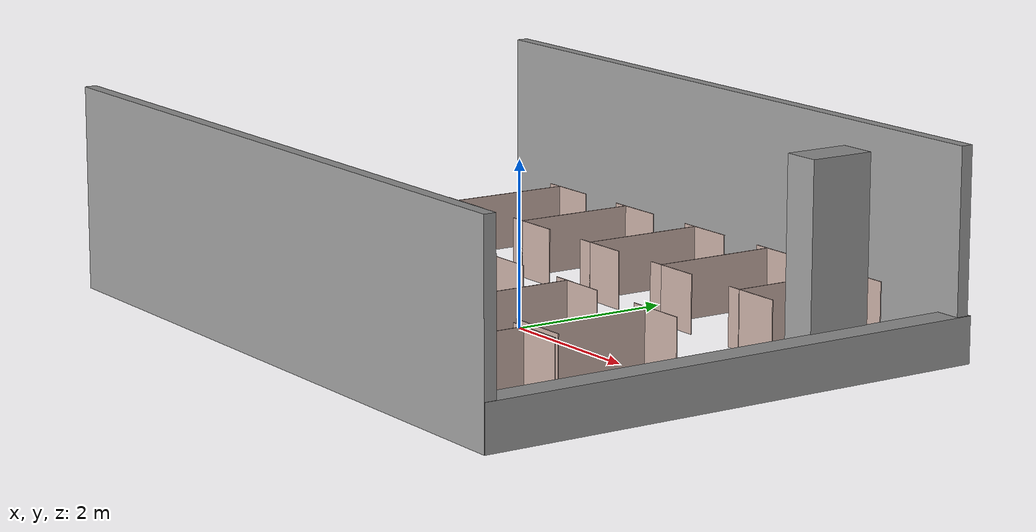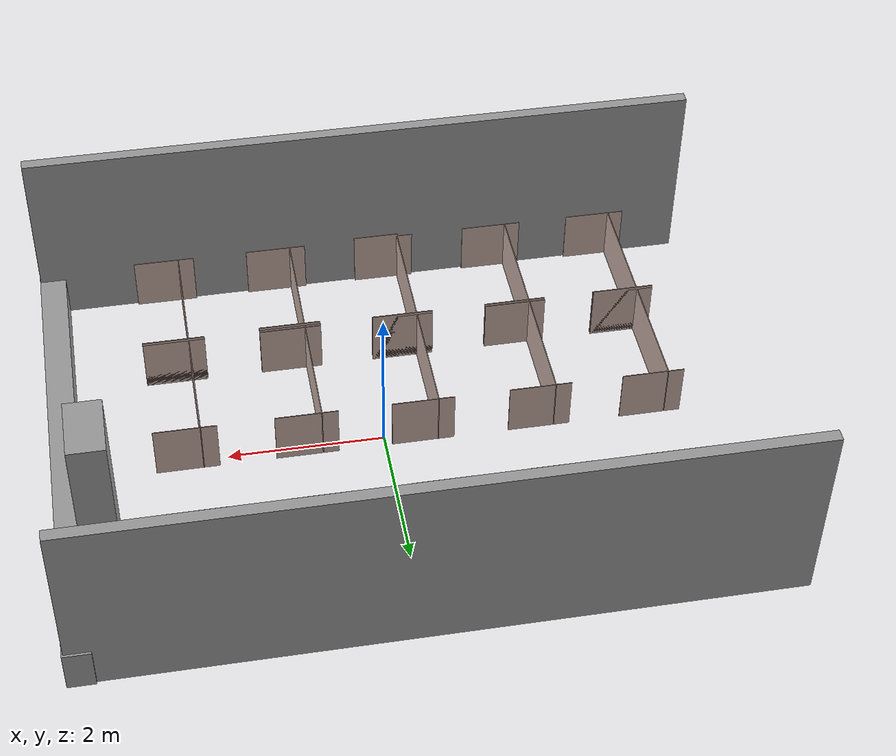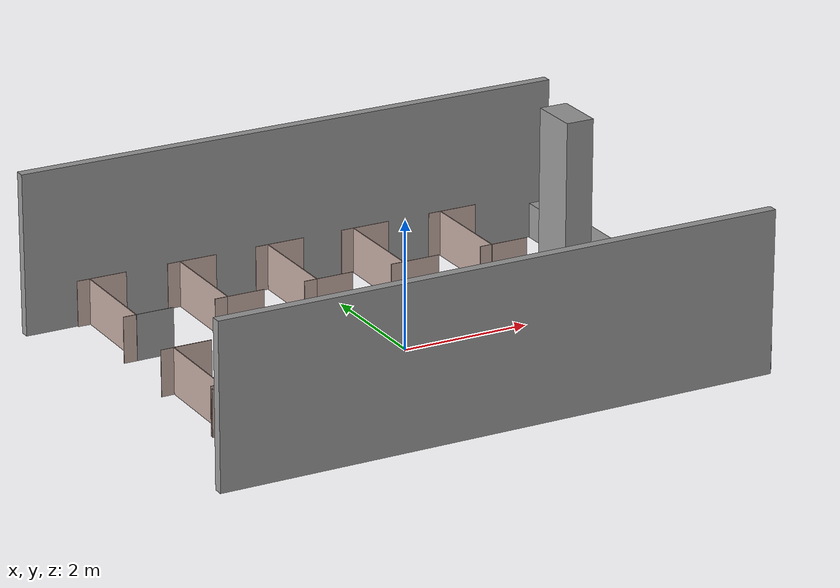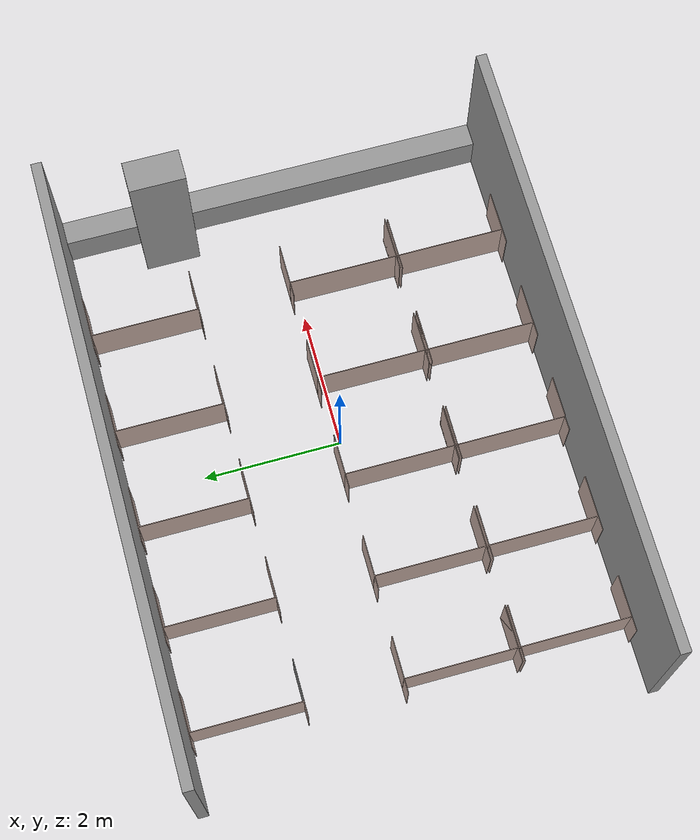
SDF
<?xml version='1.0'?>
<sdf version='1.6'>
  <model name='change_class6'>
    <pose frame=''>-0.212834 0.004944 0 0 -0 0</pose>
    <link name='Wall_10'>
      <collision name='Wall_10_Collision'>
        <geometry>
          <box>
            <size>0.598 0.01 0.715</size>
          </box>
        </geometry>
        <pose frame=''>0 0 0.3575 0 -0 0</pose>
      </collision>
      <visual name='Wall_10_Visual'>
        <pose frame=''>0 0 0.3575 0 -0 0</pose>
        <geometry>
          <box>
            <size>0.598 0.01 0.715</size>
          </box>
        </geometry>
        <material>
          <script>
            <uri>file://media/materials/scripts/gazebo.material</uri>
            <name>Gazebo/Grey</name>
          </script>
          <ambient>0.760784 0.662745 0.627451 1</ambient>
        </material>
      </visual>
      <pose frame=''>-0.159166 1.47206 0 0 -0 0</pose>
    </link>
    <link name='Wall_12'>
      <collision name='Wall_12_Collision'>
        <geometry>
          <box>
            <size>0.598 0.01 0.715</size>
          </box>
        </geometry>
        <pose frame=''>0 0 0.3575 0 -0 0</pose>
      </collision>
      <visual name='Wall_12_Visual'>
        <pose frame=''>0 0 0.3575 0 -0 0</pose>
        <geometry>
          <box>
            <size>0.598 0.01 0.715</size>
          </box>
        </geometry>
        <material>
          <script>
            <uri>file://media/materials/scripts/gazebo.material</uri>
            <name>Gazebo/Grey</name>
          </script>
          <ambient>0.760784 0.662745 0.627451 1</ambient>
        </material>
      </visual>
      <pose frame=''>1.27783 1.47206 0 0 -0 0</pose>
    </link>
    <link name='Wall_138'>
      <collision name='Wall_138_Collision'>
        <geometry>
          <box>
            <size>0.593 0.01 0.715</size>
          </box>
        </geometry>
        <pose frame=''>0 0 0.3575 0 -0 0</pose>
      </collision>
      <visual name='Wall_138_Visual'>
        <pose frame=''>0 0 0.3575 0 -0 0</pose>
        <geometry>
          <box>
            <size>0.593 0.01 0.715</size>
          </box>
        </geometry>
        <material>
          <script>
            <uri>file://media/materials/scripts/gazebo.material</uri>
            <name>Gazebo/Grey</name>
          </script>
          <ambient>0.760784 0.662745 0.627451 1</ambient>
        </material>
      </visual>
      <pose frame=''>-3.07567 3.04606 0 0 -0 0</pose>
    </link>
    <link name='Wall_14'>
      <collision name='Wall_14_Collision'>
        <geometry>
          <box>
            <size>0.61 0.01 0.715</size>
          </box>
        </geometry>
        <pose frame=''>0 0 0.3575 0 -0 0</pose>
      </collision>
      <visual name='Wall_14_Visual'>
        <pose frame=''>0 0 0.3575 0 -0 0</pose>
        <geometry>
          <box>
            <size>0.61 0.01 0.715</size>
          </box>
        </geometry>
        <material>
          <script>
            <uri>file://media/materials/scripts/gazebo.material</uri>
            <name>Gazebo/Grey</name>
          </script>
          <ambient>0.760784 0.662745 0.627451 1</ambient>
        </material>
      </visual>
      <pose frame=''>2.77583 1.47206 0 0 -0 0</pose>
    </link>
    <link name='Wall_140'>
      <collision name='Wall_140_Collision'>
        <geometry>
          <box>
            <size>0.598 0.01 0.715</size>
          </box>
        </geometry>
        <pose frame=''>0 0 0.3575 0 -0 0</pose>
      </collision>
      <visual name='Wall_140_Visual'>
        <pose frame=''>0 0 0.3575 0 -0 0</pose>
        <geometry>
          <box>
            <size>0.598 0.01 0.715</size>
          </box>
        </geometry>
        <material>
          <script>
            <uri>file://media/materials/scripts/gazebo.material</uri>
            <name>Gazebo/Grey</name>
          </script>
          <ambient>0.760784 0.662745 0.627451 1</ambient>
        </material>
      </visual>
      <pose frame=''>-1.61017 3.04606 0 0 -0 0</pose>
    </link>
    <link name='Wall_143'>
      <collision name='Wall_143_Collision'>
        <geometry>
          <box>
            <size>0.598 0.01 0.715</size>
          </box>
        </geometry>
        <pose frame=''>0 0 0.3575 0 -0 0</pose>
      </collision>
      <visual name='Wall_143_Visual'>
        <pose frame=''>0 0 0.3575 0 -0 0</pose>
        <geometry>
          <box>
            <size>0.598 0.01 0.715</size>
          </box>
        </geometry>
        <material>
          <script>
            <uri>file://media/materials/scripts/gazebo.material</uri>
            <name>Gazebo/Grey</name>
          </script>
          <ambient>0.760784 0.662745 0.627451 1</ambient>
        </material>
      </visual>
      <pose frame=''>-0.159166 3.04606 0 0 -0 0</pose>
    </link>
    <link name='Wall_147'>
      <collision name='Wall_147_Collision'>
        <geometry>
          <box>
            <size>0.598 0.01 0.715</size>
          </box>
        </geometry>
        <pose frame=''>0 0 0.3575 0 -0 0</pose>
      </collision>
      <visual name='Wall_147_Visual'>
        <pose frame=''>0 0 0.3575 0 -0 0</pose>
        <geometry>
          <box>
            <size>0.598 0.01 0.715</size>
          </box>
        </geometry>
        <material>
          <script>
            <uri>file://media/materials/scripts/gazebo.material</uri>
            <name>Gazebo/Grey</name>
          </script>
          <ambient>0.760784 0.662745 0.627451 1</ambient>
        </material>
      </visual>
      <pose frame=''>1.27783 3.04606 0 0 -0 0</pose>
    </link>
    <link name='Wall_153'>
      <collision name='Wall_153_Collision'>
        <geometry>
          <box>
            <size>0.609517 0.01 0.715</size>
          </box>
        </geometry>
        <pose frame=''>0 0 0.3575 0 -0 0</pose>
      </collision>
      <visual name='Wall_153_Visual'>
        <pose frame=''>0 0 0.3575 0 -0 0</pose>
        <geometry>
          <box>
            <size>0.609517 0.01 0.715</size>
          </box>
        </geometry>
        <material>
          <script>
            <uri>file://media/materials/scripts/gazebo.material</uri>
            <name>Gazebo/Grey</name>
          </script>
          <ambient>0.760784 0.662745 0.627451 1</ambient>
        </material>
      </visual>
      <pose frame=''>2.77583 3.04606 0 0 -0 0</pose>
    </link>
    <link name='Wall_16'>
      <collision name='Wall_16_Collision'>
        <geometry>
          <box>
            <size>0.598 0.01 0.715</size>
          </box>
        </geometry>
        <pose frame=''>0 0 0.3575 0 -0 0</pose>
      </collision>
      <visual name='Wall_16_Visual'>
        <pose frame=''>0 0 0.3575 0 -0 0</pose>
        <geometry>
          <box>
            <size>0.598 0.01 0.715</size>
          </box>
        </geometry>
        <material>
          <script>
            <uri>file://media/materials/scripts/gazebo.material</uri>
            <name>Gazebo/Grey</name>
          </script>
          <ambient>0.760784 0.662745 0.627451 1</ambient>
        </material>
      </visual>
      <pose frame=''>-3.13317 0.112056 0 0 -0 0</pose>
    </link>
    <link name='Wall_18'>
      <collision name='Wall_18_Collision'>
        <geometry>
          <box>
            <size>0.598 0.01 0.715</size>
          </box>
        </geometry>
        <pose frame=''>0 0 0.3575 0 -0 0</pose>
      </collision>
      <visual name='Wall_18_Visual'>
        <pose frame=''>0 0 0.3575 0 -0 0</pose>
        <geometry>
          <box>
            <size>0.598 0.01 0.715</size>
          </box>
        </geometry>
        <material>
          <script>
            <uri>file://media/materials/scripts/gazebo.material</uri>
            <name>Gazebo/Grey</name>
          </script>
          <ambient>0.760784 0.662745 0.627451 1</ambient>
        </material>
      </visual>
      <pose frame=''>-1.67317 0.112056 0 0 -0 0</pose>
    </link>
    <link name='Wall_193'>
      <collision name='Wall_193_Collision'>
        <geometry>
          <box>
            <size>1.584 0.01 0.715</size>
          </box>
        </geometry>
        <pose frame=''>0 0 0.3575 0 -0 0</pose>
      </collision>
      <visual name='Wall_193_Visual'>
        <pose frame=''>0 0 0.3575 0 -0 0</pose>
        <geometry>
          <box>
            <size>1.584 0.01 0.715</size>
          </box>
        </geometry>
        <material>
          <script>
            <uri>file://media/materials/scripts/gazebo.material</uri>
            <name>Gazebo/Grey</name>
          </script>
          <ambient>0.760784 0.662745 0.627451 1</ambient>
        </material>
      </visual>
      <pose frame=''>-1.90417 2.25906 0 0 0 -1.5708</pose>
    </link>
    <link name='Wall_195'>
      <collision name='Wall_195_Collision'>
        <geometry>
          <box>
            <size>1.584 0.01 0.715</size>
          </box>
        </geometry>
        <pose frame=''>0 0 0.3575 0 -0 0</pose>
      </collision>
      <visual name='Wall_195_Visual'>
        <pose frame=''>0 0 0.3575 0 -0 0</pose>
        <geometry>
          <box>
            <size>1.584 0.01 0.715</size>
          </box>
        </geometry>
        <material>
          <script>
            <uri>file://media/materials/scripts/gazebo.material</uri>
            <name>Gazebo/Grey</name>
          </script>
          <ambient>0.760784 0.662745 0.627451 1</ambient>
        </material>
      </visual>
      <pose frame=''>-0.453166 2.25906 0 0 0 -1.5708</pose>
    </link>
    <link name='Wall_197'>
      <collision name='Wall_197_Collision'>
        <geometry>
          <box>
            <size>1.584 0.01 0.715</size>
          </box>
        </geometry>
        <pose frame=''>0 0 0.3575 0 -0 0</pose>
      </collision>
      <visual name='Wall_197_Visual'>
        <pose frame=''>0 0 0.3575 0 -0 0</pose>
        <geometry>
          <box>
            <size>1.584 0.01 0.715</size>
          </box>
        </geometry>
        <material>
          <script>
            <uri>file://media/materials/scripts/gazebo.material</uri>
            <name>Gazebo/Grey</name>
          </script>
          <ambient>0.760784 0.662745 0.627451 1</ambient>
        </material>
      </visual>
      <pose frame=''>0.983834 2.25906 0 0 0 -1.5708</pose>
    </link>
    <link name='Wall_199'>
      <collision name='Wall_199_Collision'>
        <geometry>
          <box>
            <size>1.58405 0.01 0.715</size>
          </box>
        </geometry>
        <pose frame=''>0 0 0.3575 0 -0 0</pose>
      </collision>
      <visual name='Wall_199_Visual'>
        <pose frame=''>0 0 0.3575 0 -0 0</pose>
        <geometry>
          <box>
            <size>1.58405 0.01 0.715</size>
          </box>
        </geometry>
        <material>
          <script>
            <uri>file://media/materials/scripts/gazebo.material</uri>
            <name>Gazebo/Grey</name>
          </script>
          <ambient>0.760784 0.662745 0.627451 1</ambient>
        </material>
      </visual>
      <pose frame=''>2.47583 2.25906 0 0 0 -1.5708</pose>
    </link>
    <link name='Wall_20'>
      <collision name='Wall_20_Collision'>
        <geometry>
          <box>
            <size>0.598 0.01 0.715</size>
          </box>
        </geometry>
        <pose frame=''>0 0 0.3575 0 -0 0</pose>
      </collision>
      <visual name='Wall_20_Visual'>
        <pose frame=''>0 0 0.3575 0 -0 0</pose>
        <geometry>
          <box>
            <size>0.598 0.01 0.715</size>
          </box>
        </geometry>
        <material>
          <script>
            <uri>file://media/materials/scripts/gazebo.material</uri>
            <name>Gazebo/Grey</name>
          </script>
          <ambient>0.760784 0.662745 0.627451 1</ambient>
        </material>
      </visual>
      <pose frame=''>-0.171166 0.112056 0 0 -0 0</pose>
    </link>
    <link name='Wall_203'>
      <collision name='Wall_203_Collision'>
        <geometry>
          <box>
            <size>3.194 0.01 0.715</size>
          </box>
        </geometry>
        <pose frame=''>0 0 0.3575 0 -0 0</pose>
      </collision>
      <visual name='Wall_203_Visual'>
        <pose frame=''>0 0 0.3575 0 -0 0</pose>
        <geometry>
          <box>
            <size>3.194 0.01 0.715</size>
          </box>
        </geometry>
        <material>
          <script>
            <uri>file://media/materials/scripts/gazebo.material</uri>
            <name>Gazebo/Grey</name>
          </script>
          <ambient>0.760784 0.662745 0.627451 1</ambient>
        </material>
      </visual>
      <pose frame=''>-3.42717 -1.47994 0 0 0 -1.5708</pose>
    </link>
    <link name='Wall_205'>
      <collision name='Wall_205_Collision'>
        <geometry>
          <box>
            <size>3.194 0.01 0.715</size>
          </box>
        </geometry>
        <pose frame=''>0 0 0.3575 0 -0 0</pose>
      </collision>
      <visual name='Wall_205_Visual'>
        <pose frame=''>0 0 0.3575 0 -0 0</pose>
        <geometry>
          <box>
            <size>3.194 0.01 0.715</size>
          </box>
        </geometry>
        <material>
          <script>
            <uri>file://media/materials/scripts/gazebo.material</uri>
            <name>Gazebo/Grey</name>
          </script>
          <ambient>0.760784 0.662745 0.627451 1</ambient>
        </material>
      </visual>
      <pose frame=''>-1.96717 -1.47994 0 0 0 -1.5708</pose>
    </link>
    <link name='Wall_207'>
      <collision name='Wall_207_Collision'>
        <geometry>
          <box>
            <size>3.194 0.01 0.715</size>
          </box>
        </geometry>
        <pose frame=''>0 0 0.3575 0 -0 0</pose>
      </collision>
      <visual name='Wall_207_Visual'>
        <pose frame=''>0 0 0.3575 0 -0 0</pose>
        <geometry>
          <box>
            <size>3.194 0.01 0.715</size>
          </box>
        </geometry>
        <material>
          <script>
            <uri>file://media/materials/scripts/gazebo.material</uri>
            <name>Gazebo/Grey</name>
          </script>
          <ambient>0.760784 0.662745 0.627451 1</ambient>
        </material>
      </visual>
      <pose frame=''>-0.465166 -1.47994 0 0 0 -1.5708</pose>
    </link>
    <link name='Wall_209'>
      <collision name='Wall_209_Collision'>
        <geometry>
          <box>
            <size>3.194 0.01 0.715</size>
          </box>
        </geometry>
        <pose frame=''>0 0 0.3575 0 -0 0</pose>
      </collision>
      <visual name='Wall_209_Visual'>
        <pose frame=''>0 0 0.3575 0 -0 0</pose>
        <geometry>
          <box>
            <size>3.194 0.01 0.715</size>
          </box>
        </geometry>
        <material>
          <script>
            <uri>file://media/materials/scripts/gazebo.material</uri>
            <name>Gazebo/Grey</name>
          </script>
          <ambient>0.760784 0.662745 0.627451 1</ambient>
        </material>
      </visual>
      <pose frame=''>1.01283 -1.47994 0 0 0 -1.5708</pose>
    </link>
    <link name='Wall_211'>
      <collision name='Wall_211_Collision'>
        <geometry>
          <box>
            <size>3.194 0.01 0.715</size>
          </box>
        </geometry>
        <pose frame=''>0 0 0.3575 0 -0 0</pose>
      </collision>
      <visual name='Wall_211_Visual'>
        <pose frame=''>0 0 0.3575 0 -0 0</pose>
        <geometry>
          <box>
            <size>3.194 0.01 0.715</size>
          </box>
        </geometry>
        <material>
          <script>
            <uri>file://media/materials/scripts/gazebo.material</uri>
            <name>Gazebo/Grey</name>
          </script>
          <ambient>0.760784 0.662745 0.627451 1</ambient>
        </material>
      </visual>
      <pose frame=''>2.52683 -1.47994 0 0 0 -1.5708</pose>
    </link>
    <link name='Wall_214'>
      <collision name='Wall_214_Collision'>
        <geometry>
          <box>
            <size>0.01 0.01 0.715</size>
          </box>
        </geometry>
        <pose frame=''>0 0 0.3575 0 -0 0</pose>
      </collision>
      <visual name='Wall_214_Visual'>
        <pose frame=''>0 0 0.3575 0 -0 0</pose>
        <geometry>
          <box>
            <size>0.01 0.01 0.715</size>
          </box>
        </geometry>
        <material>
          <script>
            <uri>file://media/materials/scripts/gazebo.material</uri>
            <name>Gazebo/Grey</name>
          </script>
          <ambient>0.760784 0.662745 0.627451 1</ambient>
        </material>
      </visual>
      <pose frame=''>-3.36717 1.47206 0 0 -0 0</pose>
    </link>
    <link name='Wall_216'>
      <collision name='Wall_216_Collision'>
        <geometry>
          <box>
            <size>0.01 0.01 0.715</size>
          </box>
        </geometry>
        <pose frame=''>0 0 0.3575 0 -0 0</pose>
      </collision>
      <visual name='Wall_216_Visual'>
        <pose frame=''>0 0 0.3575 0 -0 0</pose>
        <geometry>
          <box>
            <size>0.01 0.01 0.715</size>
          </box>
        </geometry>
        <material>
          <script>
            <uri>file://media/materials/scripts/gazebo.material</uri>
            <name>Gazebo/Grey</name>
          </script>
          <ambient>0.760784 0.662745 0.627451 1</ambient>
        </material>
      </visual>
      <pose frame=''>-3.36717 1.47206 0 0 -0 0</pose>
    </link>
    <link name='Wall_218'>
      <collision name='Wall_218_Collision'>
        <geometry>
          <box>
            <size>0.01 0.01 0.715</size>
          </box>
        </geometry>
        <pose frame=''>0 0 0.3575 0 -0 0</pose>
      </collision>
      <visual name='Wall_218_Visual'>
        <pose frame=''>0 0 0.3575 0 -0 0</pose>
        <geometry>
          <box>
            <size>0.01 0.01 0.715</size>
          </box>
        </geometry>
        <material>
          <script>
            <uri>file://media/materials/scripts/gazebo.material</uri>
            <name>Gazebo/Grey</name>
          </script>
          <ambient>1 1 1 1</ambient>
        </material>
      </visual>
      <pose frame=''>-3.36717 3.04606 0 0 -0 0</pose>
    </link>
    <link name='Wall_222'>
      <collision name='Wall_222_Collision'>
        <geometry>
          <box>
            <size>1.584 0.01 0.715</size>
          </box>
        </geometry>
        <pose frame=''>0 0 0.3575 0 -0 0</pose>
      </collision>
      <visual name='Wall_222_Visual'>
        <pose frame=''>0 0 0.3575 0 -0 0</pose>
        <geometry>
          <box>
            <size>1.584 0.01 0.715</size>
          </box>
        </geometry>
        <material>
          <script>
            <uri>file://media/materials/scripts/gazebo.material</uri>
            <name>Gazebo/Grey</name>
          </script>
          <ambient>0.760784 0.662745 0.627451 1</ambient>
        </material>
      </visual>
      <pose frame=''>-3.36717 2.25906 0 0 -0 1.5708</pose>
    </link>
    <link name='Wall_224'>
      <collision name='Wall_224_Collision'>
        <geometry>
          <box>
            <size>0.21 0.01 0.715</size>
          </box>
        </geometry>
        <pose frame=''>0 0 0.3575 0 -0 0</pose>
      </collision>
      <visual name='Wall_224_Visual'>
        <pose frame=''>0 0 0.3575 0 -0 0</pose>
        <geometry>
          <box>
            <size>0.21 0.01 0.715</size>
          </box>
        </geometry>
        <material>
          <script>
            <uri>file://media/materials/scripts/gazebo.material</uri>
            <name>Gazebo/Grey</name>
          </script>
          <ambient>0.760784 0.662745 0.627451 1</ambient>
        </material>
      </visual>
      <pose frame=''>-3.46717 3.04606 0 0 -0 0</pose>
    </link>
    <link name='Wall_226'>
      <collision name='Wall_226_Collision'>
        <geometry>
          <box>
            <size>0.21 0.01 0.715</size>
          </box>
        </geometry>
        <pose frame=''>0 0 0.3575 0 -0 0</pose>
      </collision>
      <visual name='Wall_226_Visual'>
        <pose frame=''>0 0 0.3575 0 -0 0</pose>
        <geometry>
          <box>
            <size>0.21 0.01 0.715</size>
          </box>
        </geometry>
        <material>
          <script>
            <uri>file://media/materials/scripts/gazebo.material</uri>
            <name>Gazebo/Grey</name>
          </script>
          <ambient>0.760784 0.662745 0.627451 1</ambient>
        </material>
      </visual>
      <pose frame=''>-3.46717 1.47206 0 0 -0 0</pose>
    </link>
    <link name='Wall_228'>
      <collision name='Wall_228_Collision'>
        <geometry>
          <box>
            <size>0.21 0.01 0.715</size>
          </box>
        </geometry>
        <pose frame=''>0 0 0.3575 0 -0 0</pose>
      </collision>
      <visual name='Wall_228_Visual'>
        <pose frame=''>0 0 0.3575 0 -0 0</pose>
        <geometry>
          <box>
            <size>0.21 0.01 0.715</size>
          </box>
        </geometry>
        <material>
          <script>
            <uri>file://media/materials/scripts/gazebo.material</uri>
            <name>Gazebo/Grey</name>
          </script>
          <ambient>0.760784 0.662745 0.627451 1</ambient>
        </material>
      </visual>
      <pose frame=''>-2.00417 3.04606 0 0 -0 0</pose>
    </link>
    <link name='Wall_230'>
      <collision name='Wall_230_Collision'>
        <geometry>
          <box>
            <size>0.21 0.01 0.715</size>
          </box>
        </geometry>
        <pose frame=''>0 0 0.3575 0 -0 0</pose>
      </collision>
      <visual name='Wall_230_Visual'>
        <pose frame=''>0 0 0.3575 0 -0 0</pose>
        <geometry>
          <box>
            <size>0.21 0.01 0.715</size>
          </box>
        </geometry>
        <material>
          <script>
            <uri>file://media/materials/scripts/gazebo.material</uri>
            <name>Gazebo/Grey</name>
          </script>
          <ambient>0.760784 0.662745 0.627451 1</ambient>
        </material>
      </visual>
      <pose frame=''>-2.00417 1.47206 0 0 -0 0</pose>
    </link>
    <link name='Wall_232'>
      <collision name='Wall_232_Collision'>
        <geometry>
          <box>
            <size>0.21 0.01 0.715</size>
          </box>
        </geometry>
        <pose frame=''>0 0 0.3575 0 -0 0</pose>
      </collision>
      <visual name='Wall_232_Visual'>
        <pose frame=''>0 0 0.3575 0 -0 0</pose>
        <geometry>
          <box>
            <size>0.21 0.01 0.715</size>
          </box>
        </geometry>
        <material>
          <script>
            <uri>file://media/materials/scripts/gazebo.material</uri>
            <name>Gazebo/Grey</name>
          </script>
          <ambient>0.760784 0.662745 0.627451 1</ambient>
        </material>
      </visual>
      <pose frame=''>-0.553166 1.47206 0 0 -0 0</pose>
    </link>
    <link name='Wall_234'>
      <collision name='Wall_234_Collision'>
        <geometry>
          <box>
            <size>0.21 0.01 0.715</size>
          </box>
        </geometry>
        <pose frame=''>0 0 0.3575 0 -0 0</pose>
      </collision>
      <visual name='Wall_234_Visual'>
        <pose frame=''>0 0 0.3575 0 -0 0</pose>
        <geometry>
          <box>
            <size>0.21 0.01 0.715</size>
          </box>
        </geometry>
        <material>
          <script>
            <uri>file://media/materials/scripts/gazebo.material</uri>
            <name>Gazebo/Grey</name>
          </script>
          <ambient>0.760784 0.662745 0.627451 1</ambient>
        </material>
      </visual>
      <pose frame=''>-0.553166 3.04606 0 0 -0 0</pose>
    </link>
    <link name='Wall_236'>
      <collision name='Wall_236_Collision'>
        <geometry>
          <box>
            <size>0.21 0.01 0.715</size>
          </box>
        </geometry>
        <pose frame=''>0 0 0.3575 0 -0 0</pose>
      </collision>
      <visual name='Wall_236_Visual'>
        <pose frame=''>0 0 0.3575 0 -0 0</pose>
        <geometry>
          <box>
            <size>0.21 0.01 0.715</size>
          </box>
        </geometry>
        <material>
          <script>
            <uri>file://media/materials/scripts/gazebo.material</uri>
            <name>Gazebo/Grey</name>
          </script>
          <ambient>0.760784 0.662745 0.627451 1</ambient>
        </material>
      </visual>
      <pose frame=''>0.883834 1.47206 0 0 -0 0</pose>
    </link>
    <link name='Wall_238'>
      <collision name='Wall_238_Collision'>
        <geometry>
          <box>
            <size>0.21 0.01 0.715</size>
          </box>
        </geometry>
        <pose frame=''>0 0 0.3575 0 -0 0</pose>
      </collision>
      <visual name='Wall_238_Visual'>
        <pose frame=''>0 0 0.3575 0 -0 0</pose>
        <geometry>
          <box>
            <size>0.21 0.01 0.715</size>
          </box>
        </geometry>
        <material>
          <script>
            <uri>file://media/materials/scripts/gazebo.material</uri>
            <name>Gazebo/Grey</name>
          </script>
          <ambient>0.760784 0.662745 0.627451 1</ambient>
        </material>
      </visual>
      <pose frame=''>0.883834 3.04606 0 0 -0 0</pose>
    </link>
    <link name='Wall_24'>
      <collision name='Wall_24_Collision'>
        <geometry>
          <box>
            <size>0.598 0.01 0.715</size>
          </box>
        </geometry>
        <pose frame=''>0 0 0.3575 0 -0 0</pose>
      </collision>
      <visual name='Wall_24_Visual'>
        <pose frame=''>0 0 0.3575 0 -0 0</pose>
        <geometry>
          <box>
            <size>0.598 0.01 0.715</size>
          </box>
        </geometry>
        <material>
          <script>
            <uri>file://media/materials/scripts/gazebo.material</uri>
            <name>Gazebo/Grey</name>
          </script>
          <ambient>0.760784 0.662745 0.627451 1</ambient>
        </material>
      </visual>
      <pose frame=''>2.82083 0.112056 0 0 -0 0</pose>
    </link>
    <link name='Wall_240'>
      <collision name='Wall_240_Collision'>
        <geometry>
          <box>
            <size>0.198 0.01 0.715</size>
          </box>
        </geometry>
        <pose frame=''>0 0 0.3575 0 -0 0</pose>
      </collision>
      <visual name='Wall_240_Visual'>
        <pose frame=''>0 0 0.3575 0 -0 0</pose>
        <geometry>
          <box>
            <size>0.198 0.01 0.715</size>
          </box>
        </geometry>
        <material>
          <script>
            <uri>file://media/materials/scripts/gazebo.material</uri>
            <name>Gazebo/Grey</name>
          </script>
          <ambient>0.760784 0.662745 0.627451 1</ambient>
        </material>
      </visual>
      <pose frame=''>2.38183 1.47206 0 0 -0 0</pose>
    </link>
    <link name='Wall_242'>
      <collision name='Wall_242_Collision'>
        <geometry>
          <box>
            <size>0.21 0.01 0.715</size>
          </box>
        </geometry>
        <pose frame=''>0 0 0.3575 0 -0 0</pose>
      </collision>
      <visual name='Wall_242_Visual'>
        <pose frame=''>0 0 0.3575 0 -0 0</pose>
        <geometry>
          <box>
            <size>0.21 0.01 0.715</size>
          </box>
        </geometry>
        <material>
          <script>
            <uri>file://media/materials/scripts/gazebo.material</uri>
            <name>Gazebo/Grey</name>
          </script>
          <ambient>0.760784 0.662745 0.627451 1</ambient>
        </material>
      </visual>
      <pose frame=''>2.37583 3.04606 0 0 -0 0</pose>
    </link>
    <link name='Wall_244'>
      <collision name='Wall_244_Collision'>
        <geometry>
          <box>
            <size>0.21 0.01 0.715</size>
          </box>
        </geometry>
        <pose frame=''>0 0 0.3575 0 -0 0</pose>
      </collision>
      <visual name='Wall_244_Visual'>
        <pose frame=''>0 0 0.3575 0 -0 0</pose>
        <geometry>
          <box>
            <size>0.21 0.01 0.715</size>
          </box>
        </geometry>
        <material>
          <script>
            <uri>file://media/materials/scripts/gazebo.material</uri>
            <name>Gazebo/Grey</name>
          </script>
          <ambient>0.760784 0.662745 0.627451 1</ambient>
        </material>
      </visual>
      <pose frame=''>-3.52717 0.112056 0 0 -0 0</pose>
    </link>
    <link name='Wall_246'>
      <collision name='Wall_246_Collision'>
        <geometry>
          <box>
            <size>0.21 0.01 0.715</size>
          </box>
        </geometry>
        <pose frame=''>0 0 0.3575 0 -0 0</pose>
      </collision>
      <visual name='Wall_246_Visual'>
        <pose frame=''>0 0 0.3575 0 -0 0</pose>
        <geometry>
          <box>
            <size>0.21 0.01 0.715</size>
          </box>
        </geometry>
        <material>
          <script>
            <uri>file://media/materials/scripts/gazebo.material</uri>
            <name>Gazebo/Grey</name>
          </script>
          <ambient>0.760784 0.662745 0.627451 1</ambient>
        </material>
      </visual>
      <pose frame=''>-3.52717 -3.07194 0 0 -0 0</pose>
    </link>
    <link name='Wall_248'>
      <collision name='Wall_248_Collision'>
        <geometry>
          <box>
            <size>0.21 0.01 0.715</size>
          </box>
        </geometry>
        <pose frame=''>0 0 0.3575 0 -0 0</pose>
      </collision>
      <visual name='Wall_248_Visual'>
        <pose frame=''>0 0 0.3575 0 -0 0</pose>
        <geometry>
          <box>
            <size>0.21 0.01 0.715</size>
          </box>
        </geometry>
        <material>
          <script>
            <uri>file://media/materials/scripts/gazebo.material</uri>
            <name>Gazebo/Grey</name>
          </script>
          <ambient>0.760784 0.662745 0.627451 1</ambient>
        </material>
      </visual>
      <pose frame=''>-2.06717 0.112056 0 0 -0 0</pose>
    </link>
    <link name='Wall_250'>
      <collision name='Wall_250_Collision'>
        <geometry>
          <box>
            <size>0.21 0.01 0.715</size>
          </box>
        </geometry>
        <pose frame=''>0 0 0.3575 0 -0 0</pose>
      </collision>
      <visual name='Wall_250_Visual'>
        <pose frame=''>0 0 0.3575 0 -0 0</pose>
        <geometry>
          <box>
            <size>0.21 0.01 0.715</size>
          </box>
        </geometry>
        <material>
          <script>
            <uri>file://media/materials/scripts/gazebo.material</uri>
            <name>Gazebo/Grey</name>
          </script>
          <ambient>0.760784 0.662745 0.627451 1</ambient>
        </material>
      </visual>
      <pose frame=''>-2.06717 -3.07194 0 0 -0 0</pose>
    </link>
    <link name='Wall_26'>
      <collision name='Wall_26_Collision'>
        <geometry>
          <box>
            <size>0.798 0.01 0.751</size>
          </box>
        </geometry>
        <pose frame=''>0 0 0.3755 0 -0 0</pose>
      </collision>
      <visual name='Wall_26_Visual'>
        <pose frame=''>0 0 0.3755 0 -0 0</pose>
        <geometry>
          <box>
            <size>0.798 0.01 0.751</size>
          </box>
        </geometry>
        <material>
          <script>
            <uri>file://media/materials/scripts/gazebo.material</uri>
            <name>Gazebo/Grey</name>
          </script>
          <ambient>0.760784 0.662745 0.627451 1</ambient>
        </material>
      </visual>
      <pose frame=''>-3.23317 -1.46794 0 0 -0 0</pose>
    </link>
    <link name='Wall_28'>
      <collision name='Wall_28_Collision'>
        <geometry>
          <box>
            <size>0.798 0.01 0.715</size>
          </box>
        </geometry>
        <pose frame=''>0 0 0.3575 0 -0 0</pose>
      </collision>
      <visual name='Wall_28_Visual'>
        <pose frame=''>0 0 0.3575 0 -0 0</pose>
        <geometry>
          <box>
            <size>0.798 0.01 0.715</size>
          </box>
        </geometry>
        <material>
          <script>
            <uri>file://media/materials/scripts/gazebo.material</uri>
            <name>Gazebo/Grey</name>
          </script>
          <ambient>0.760784 0.662745 0.627451 1</ambient>
        </material>
      </visual>
      <pose frame=''>-1.77717 -1.46794 0 0 -0 0</pose>
    </link>
    <link name='Wall_287'>
      <collision name='Wall_287_Collision'>
        <geometry>
          <box>
            <size>0.21 0.01 0.715</size>
          </box>
        </geometry>
        <pose frame=''>0 0 0.3575 0 -0 0</pose>
      </collision>
      <visual name='Wall_287_Visual'>
        <pose frame=''>0 0 0.3575 0 -0 0</pose>
        <geometry>
          <box>
            <size>0.21 0.01 0.715</size>
          </box>
        </geometry>
        <material>
          <script>
            <uri>file://media/materials/scripts/gazebo.material</uri>
            <name>Gazebo/Grey</name>
          </script>
          <ambient>0.760784 0.662745 0.627451 1</ambient>
        </material>
      </visual>
      <pose frame=''>-0.565166 0.112056 0 0 -0 0</pose>
    </link>
    <link name='Wall_289'>
      <collision name='Wall_289_Collision'>
        <geometry>
          <box>
            <size>0.21 0.01 0.715</size>
          </box>
        </geometry>
        <pose frame=''>0 0 0.3575 0 -0 0</pose>
      </collision>
      <visual name='Wall_289_Visual'>
        <pose frame=''>0 0 0.3575 0 -0 0</pose>
        <geometry>
          <box>
            <size>0.21 0.01 0.715</size>
          </box>
        </geometry>
        <material>
          <script>
            <uri>file://media/materials/scripts/gazebo.material</uri>
            <name>Gazebo/Grey</name>
          </script>
          <ambient>0.760784 0.662745 0.627451 1</ambient>
        </material>
      </visual>
      <pose frame=''>-0.565166 -3.07194 0 0 -0 0</pose>
    </link>
    <link name='Wall_291'>
      <collision name='Wall_291_Collision'>
        <geometry>
          <box>
            <size>0.21 0.01 0.715</size>
          </box>
        </geometry>
        <pose frame=''>0 0 0.3575 0 -0 0</pose>
      </collision>
      <visual name='Wall_291_Visual'>
        <pose frame=''>0 0 0.3575 0 -0 0</pose>
        <geometry>
          <box>
            <size>0.21 0.01 0.715</size>
          </box>
        </geometry>
        <material>
          <script>
            <uri>file://media/materials/scripts/gazebo.material</uri>
            <name>Gazebo/Grey</name>
          </script>
          <ambient>0.760784 0.662745 0.627451 1</ambient>
        </material>
      </visual>
      <pose frame=''>0.912834 0.112056 0 0 -0 0</pose>
    </link>
    <link name='Wall_293'>
      <collision name='Wall_293_Collision'>
        <geometry>
          <box>
            <size>0.21 0.01 0.715</size>
          </box>
        </geometry>
        <pose frame=''>0 0 0.3575 0 -0 0</pose>
      </collision>
      <visual name='Wall_293_Visual'>
        <pose frame=''>0 0 0.3575 0 -0 0</pose>
        <geometry>
          <box>
            <size>0.21 0.01 0.715</size>
          </box>
        </geometry>
        <material>
          <script>
            <uri>file://media/materials/scripts/gazebo.material</uri>
            <name>Gazebo/Grey</name>
          </script>
          <ambient>0.760784 0.662745 0.627451 1</ambient>
        </material>
      </visual>
      <pose frame=''>0.912834 -3.07194 0 0 -0 0</pose>
    </link>
    <link name='Wall_295'>
      <collision name='Wall_295_Collision'>
        <geometry>
          <box>
            <size>0.21 0.01 0.715</size>
          </box>
        </geometry>
        <pose frame=''>0 0 0.3575 0 -0 0</pose>
      </collision>
      <visual name='Wall_295_Visual'>
        <pose frame=''>0 0 0.3575 0 -0 0</pose>
        <geometry>
          <box>
            <size>0.21 0.01 0.715</size>
          </box>
        </geometry>
        <material>
          <script>
            <uri>file://media/materials/scripts/gazebo.material</uri>
            <name>Gazebo/Grey</name>
          </script>
          <ambient>0.760784 0.662745 0.627451 1</ambient>
        </material>
      </visual>
      <pose frame=''>2.42683 0.112056 0 0 -0 0</pose>
    </link>
    <link name='Wall_297'>
      <collision name='Wall_297_Collision'>
        <geometry>
          <box>
            <size>0.21 0.01 0.715</size>
          </box>
        </geometry>
        <pose frame=''>0 0 0.3575 0 -0 0</pose>
      </collision>
      <visual name='Wall_297_Visual'>
        <pose frame=''>0 0 0.3575 0 -0 0</pose>
        <geometry>
          <box>
            <size>0.21 0.01 0.715</size>
          </box>
        </geometry>
        <material>
          <script>
            <uri>file://media/materials/scripts/gazebo.material</uri>
            <name>Gazebo/Grey</name>
          </script>
          <ambient>0.760784 0.662745 0.627451 1</ambient>
        </material>
      </visual>
      <pose frame=''>2.42683 -3.07194 0 0 -0 0</pose>
    </link>
    <link name='Wall_299'>
      <collision name='Wall_299_Collision'>
        <geometry>
          <box>
            <size>6.495 0.34 0.555</size>
          </box>
        </geometry>
        <pose frame=''>0 0 0.2775 0 -0 0</pose>
      </collision>
      <visual name='Wall_299_Visual'>
        <pose frame=''>0 0 0.2775 0 -0 0</pose>
        <geometry>
          <box>
            <size>6.495 0.34 0.555</size>
          </box>
        </geometry>
        <material>
          <script>
            <uri>file://media/materials/scripts/gazebo.material</uri>
            <name>Gazebo/Grey</name>
          </script>
          <ambient>0.713726 0.713726 0.713726 1</ambient>
        </material>
      </visual>
      <pose frame=''>4.21464 0.003131 0 0 0 -1.5708</pose>
    </link>
    <link name='Wall_30'>
      <collision name='Wall_30_Collision'>
        <geometry>
          <box>
            <size>0.798 0.01 0.751</size>
          </box>
        </geometry>
        <pose frame=''>0 0 0.3755 0 -0 0</pose>
      </collision>
      <visual name='Wall_30_Visual'>
        <pose frame=''>0 0 0.3755 0 -0 0</pose>
        <geometry>
          <box>
            <size>0.798 0.01 0.751</size>
          </box>
        </geometry>
        <material>
          <script>
            <uri>file://media/materials/scripts/gazebo.material</uri>
            <name>Gazebo/Grey</name>
          </script>
          <ambient>0.760784 0.662745 0.627451 1</ambient>
        </material>
      </visual>
      <pose frame=''>-0.273166 -1.46794 0 0 -0 0</pose>
    </link>
    <link name='Wall_301'>
      <collision name='Wall_301_Collision'>
        <geometry>
          <box>
            <size>0.795 0.45 2.5</size>
          </box>
        </geometry>
        <pose frame=''>0 0 1.25 0 -0 0</pose>
      </collision>
      <visual name='Wall_301_Visual'>
        <pose frame=''>0 0 1.25 0 -0 0</pose>
        <geometry>
          <box>
            <size>0.795 0.45 2.5</size>
          </box>
        </geometry>
        <material>
          <script>
            <uri>file://media/materials/scripts/gazebo.material</uri>
            <name>Gazebo/Grey</name>
          </script>
          <ambient>1 1 1 1</ambient>
        </material>
      </visual>
      <pose frame=''>3.83083 1.62756 0 0 0 -1.5708</pose>
    </link>
    <link name='Wall_316'>
      <collision name='Wall_316_Collision'>
        <geometry>
          <box>
            <size>8.75 0.15 2.5</size>
          </box>
        </geometry>
        <pose frame=''>0 0 1.25 0 -0 0</pose>
      </collision>
      <visual name='Wall_316_Visual'>
        <pose frame=''>0 0 1.25 0 -0 0</pose>
        <geometry>
          <box>
            <size>8.75 0.15 2.5</size>
          </box>
        </geometry>
        <material>
          <script>
            <uri>file://media/materials/scripts/gazebo.material</uri>
            <name>Gazebo/Grey</name>
          </script>
          <ambient>1 1 1 1</ambient>
        </material>
      </visual>
      <pose frame=''>-0.009638 3.14459 0 0 -0 0</pose>
    </link>
    <link name='Wall_318'>
      <collision name='Wall_318_Collision'>
        <geometry>
          <box>
            <size>8.75 0.15 2.5</size>
          </box>
        </geometry>
        <pose frame=''>0 0 1.25 0 -0 0</pose>
      </collision>
      <visual name='Wall_318_Visual'>
        <pose frame=''>0 0 1.25 0 -0 0</pose>
        <geometry>
          <box>
            <size>8.75 0.15 2.5</size>
          </box>
        </geometry>
        <material>
          <script>
            <uri>file://media/materials/scripts/gazebo.material</uri>
            <name>Gazebo/Grey</name>
          </script>
          <ambient>1 1 1 1</ambient>
        </material>
      </visual>
      <pose frame=''>0.001668 -3.17563 0 0 -0 0</pose>
    </link>
    <link name='Wall_32'>
      <collision name='Wall_32_Collision'>
        <geometry>
          <box>
            <size>0.598 0.01 0.715</size>
          </box>
        </geometry>
        <pose frame=''>0 0 0.3575 0 -0 0</pose>
      </collision>
      <visual name='Wall_32_Visual'>
        <pose frame=''>0 0 0.3575 0 -0 0</pose>
        <geometry>
          <box>
            <size>0.598 0.01 0.715</size>
          </box>
        </geometry>
        <material>
          <script>
            <uri>file://media/materials/scripts/gazebo.material</uri>
            <name>Gazebo/Grey</name>
          </script>
          <ambient>0.760784 0.662745 0.627451 1</ambient>
        </material>
      </visual>
      <pose frame=''>1.30683 0.112056 0 0 -0 0</pose>
    </link>
    <link name='Wall_36'>
      <collision name='Wall_36_Collision'>
        <geometry>
          <box>
            <size>0.799 0.01 0.751</size>
          </box>
        </geometry>
        <pose frame=''>0 0 0.3755 0 -0 0</pose>
      </collision>
      <visual name='Wall_36_Visual'>
        <pose frame=''>0 0 0.3755 0 -0 0</pose>
        <geometry>
          <box>
            <size>0.799 0.01 0.751</size>
          </box>
        </geometry>
        <material>
          <script>
            <uri>file://media/materials/scripts/gazebo.material</uri>
            <name>Gazebo/Grey</name>
          </script>
          <ambient>0.760784 0.662745 0.627451 1</ambient>
        </material>
      </visual>
      <pose frame=''>1.20683 -1.50794 0 0 -0 0</pose>
    </link>
    <link name='Wall_38'>
      <collision name='Wall_38_Collision'>
        <geometry>
          <box>
            <size>0.798 0.01 0.751</size>
          </box>
        </geometry>
        <pose frame=''>0 0 0.3755 0 -0 0</pose>
      </collision>
      <visual name='Wall_38_Visual'>
        <pose frame=''>0 0 0.3755 0 -0 0</pose>
        <geometry>
          <box>
            <size>0.798 0.01 0.751</size>
          </box>
        </geometry>
        <material>
          <script>
            <uri>file://media/materials/scripts/gazebo.material</uri>
            <name>Gazebo/Grey</name>
          </script>
          <ambient>0.760784 0.662745 0.627451 1</ambient>
        </material>
      </visual>
      <pose frame=''>2.72083 -1.46794 0 0 -0 0</pose>
    </link>
    <link name='Wall_40'>
      <collision name='Wall_40_Collision'>
        <geometry>
          <box>
            <size>0.798 0.01 0.715</size>
          </box>
        </geometry>
        <pose frame=''>0 0 0.3575 0 -0 0</pose>
      </collision>
      <visual name='Wall_40_Visual'>
        <pose frame=''>0 0 0.3575 0 -0 0</pose>
        <geometry>
          <box>
            <size>0.798 0.01 0.715</size>
          </box>
        </geometry>
        <material>
          <script>
            <uri>file://media/materials/scripts/gazebo.material</uri>
            <name>Gazebo/Grey</name>
          </script>
          <ambient>0.760784 0.662745 0.627451 1</ambient>
        </material>
      </visual>
      <pose frame=''>2.72083 -1.46794 0 0 -0 0</pose>
    </link>
    <link name='Wall_42'>
      <collision name='Wall_42_Collision'>
        <geometry>
          <box>
            <size>0.798 0.01 0.715</size>
          </box>
        </geometry>
        <pose frame=''>0 0 0.3575 0 -0 0</pose>
      </collision>
      <visual name='Wall_42_Visual'>
        <pose frame=''>0 0 0.3575 0 -0 0</pose>
        <geometry>
          <box>
            <size>0.798 0.01 0.715</size>
          </box>
        </geometry>
        <material>
          <script>
            <uri>file://media/materials/scripts/gazebo.material</uri>
            <name>Gazebo/Grey</name>
          </script>
          <ambient>0.760784 0.662745 0.627451 1</ambient>
        </material>
      </visual>
      <pose frame=''>2.72083 -1.50794 0 0 -0 0</pose>
    </link>
    <link name='Wall_44'>
      <collision name='Wall_44_Collision'>
        <geometry>
          <box>
            <size>0.799 0.01 0.751</size>
          </box>
        </geometry>
        <pose frame=''>0 0 0.3755 0 -0 0</pose>
      </collision>
      <visual name='Wall_44_Visual'>
        <pose frame=''>0 0 0.3755 0 -0 0</pose>
        <geometry>
          <box>
            <size>0.799 0.01 0.751</size>
          </box>
        </geometry>
        <material>
          <script>
            <uri>file://media/materials/scripts/gazebo.material</uri>
            <name>Gazebo/Grey</name>
          </script>
          <ambient>0.760784 0.662745 0.627451 1</ambient>
        </material>
      </visual>
      <pose frame=''>1.20683 -1.50794 0 0 -0 0</pose>
    </link>
    <link name='Wall_46'>
      <collision name='Wall_46_Collision'>
        <geometry>
          <box>
            <size>0.798 0.01 0.715</size>
          </box>
        </geometry>
        <pose frame=''>0 0 0.3575 0 -0 0</pose>
      </collision>
      <visual name='Wall_46_Visual'>
        <pose frame=''>0 0 0.3575 0 -0 0</pose>
        <geometry>
          <box>
            <size>0.798 0.01 0.715</size>
          </box>
        </geometry>
        <material>
          <script>
            <uri>file://media/materials/scripts/gazebo.material</uri>
            <name>Gazebo/Grey</name>
          </script>
          <ambient>0.760784 0.662745 0.627451 1</ambient>
        </material>
      </visual>
      <pose frame=''>1.20683 -1.50794 0 0 -0 0</pose>
    </link>
    <link name='Wall_48'>
      <collision name='Wall_48_Collision'>
        <geometry>
          <box>
            <size>0.799 0.01 0.715</size>
          </box>
        </geometry>
        <pose frame=''>0 0 0.3575 0 -0 0</pose>
      </collision>
      <visual name='Wall_48_Visual'>
        <pose frame=''>0 0 0.3575 0 -0 0</pose>
        <geometry>
          <box>
            <size>0.799 0.01 0.715</size>
          </box>
        </geometry>
        <material>
          <script>
            <uri>file://media/materials/scripts/gazebo.material</uri>
            <name>Gazebo/Grey</name>
          </script>
          <ambient>0.760784 0.662745 0.627451 1</ambient>
        </material>
      </visual>
      <pose frame=''>1.20683 -1.46794 0 0 -0 0</pose>
    </link>
    <link name='Wall_53'>
      <collision name='Wall_53_Collision'>
        <geometry>
          <box>
            <size>0.798 0.01 0.715</size>
          </box>
        </geometry>
        <pose frame=''>0 0 0.3575 0 -0 0</pose>
      </collision>
      <visual name='Wall_53_Visual'>
        <pose frame=''>0 0 0.3575 0 -0 0</pose>
        <geometry>
          <box>
            <size>0.798 0.01 0.715</size>
          </box>
        </geometry>
        <material>
          <script>
            <uri>file://media/materials/scripts/gazebo.material</uri>
            <name>Gazebo/Grey</name>
          </script>
          <ambient>0.760784 0.662745 0.627451 1</ambient>
        </material>
      </visual>
      <pose frame=''>-0.273166 -1.46794 0 0 -0 0</pose>
    </link>
    <link name='Wall_55'>
      <collision name='Wall_55_Collision'>
        <geometry>
          <box>
            <size>0.798 0.01 0.715</size>
          </box>
        </geometry>
        <pose frame=''>0 0 0.3575 0 -0 0</pose>
      </collision>
      <visual name='Wall_55_Visual'>
        <pose frame=''>0 0 0.3575 0 -0 0</pose>
        <geometry>
          <box>
            <size>0.798 0.01 0.715</size>
          </box>
        </geometry>
        <material>
          <script>
            <uri>file://media/materials/scripts/gazebo.material</uri>
            <name>Gazebo/Grey</name>
          </script>
          <ambient>0.760784 0.662745 0.627451 1</ambient>
        </material>
      </visual>
      <pose frame=''>-0.273166 -1.50794 0 0 -0 0</pose>
    </link>
    <link name='Wall_57'>
      <collision name='Wall_57_Collision'>
        <geometry>
          <box>
            <size>0.798 0.01 0.715</size>
          </box>
        </geometry>
        <pose frame=''>0 0 0.3575 0 -0 0</pose>
      </collision>
      <visual name='Wall_57_Visual'>
        <pose frame=''>0 0 0.3575 0 -0 0</pose>
        <geometry>
          <box>
            <size>0.798 0.01 0.715</size>
          </box>
        </geometry>
        <material>
          <script>
            <uri>file://media/materials/scripts/gazebo.material</uri>
            <name>Gazebo/Grey</name>
          </script>
          <ambient>0.760784 0.662745 0.627451 1</ambient>
        </material>
      </visual>
      <pose frame=''>-1.77717 -1.50794 0 0 -0 0</pose>
    </link>
    <link name='Wall_59'>
      <collision name='Wall_59_Collision'>
        <geometry>
          <box>
            <size>0.798 0.01 0.715</size>
          </box>
        </geometry>
        <pose frame=''>0 0 0.3575 0 -0 0</pose>
      </collision>
      <visual name='Wall_59_Visual'>
        <pose frame=''>0 0 0.3575 0 -0 0</pose>
        <geometry>
          <box>
            <size>0.798 0.01 0.715</size>
          </box>
        </geometry>
        <material>
          <script>
            <uri>file://media/materials/scripts/gazebo.material</uri>
            <name>Gazebo/Grey</name>
          </script>
          <ambient>0.760784 0.662745 0.627451 1</ambient>
        </material>
      </visual>
      <pose frame=''>-3.23317 -1.46794 0 0 -0 0</pose>
    </link>
    <link name='Wall_6'>
      <collision name='Wall_6_Collision'>
        <geometry>
          <box>
            <size>0.598 0.01 0.715</size>
          </box>
        </geometry>
        <pose frame=''>0 0 0.3575 0 -0 0</pose>
      </collision>
      <visual name='Wall_6_Visual'>
        <pose frame=''>0 0 0.3575 0 -0 0</pose>
        <geometry>
          <box>
            <size>0.598 0.01 0.715</size>
          </box>
        </geometry>
        <material>
          <script>
            <uri>file://media/materials/scripts/gazebo.material</uri>
            <name>Gazebo/Grey</name>
          </script>
          <ambient>0.494118 0.494118 0.494118 1</ambient>
        </material>
      </visual>
      <pose frame=''>-3.07317 1.47206 0 0 -0 0</pose>
    </link>
    <link name='Wall_61'>
      <collision name='Wall_61_Collision'>
        <geometry>
          <box>
            <size>0.798 0.01 0.715</size>
          </box>
        </geometry>
        <pose frame=''>0 0 0.3575 0 -0 0</pose>
      </collision>
      <visual name='Wall_61_Visual'>
        <pose frame=''>0 0 0.3575 0 -0 0</pose>
        <geometry>
          <box>
            <size>0.798 0.01 0.715</size>
          </box>
        </geometry>
        <material>
          <script>
            <uri>file://media/materials/scripts/gazebo.material</uri>
            <name>Gazebo/Grey</name>
          </script>
          <ambient>0.760784 0.662745 0.627451 1</ambient>
        </material>
      </visual>
      <pose frame=''>-3.23317 -1.50794 0 0 -0 0</pose>
    </link>
    <link name='Wall_65'>
      <collision name='Wall_65_Collision'>
        <geometry>
          <box>
            <size>0.598 0.01 0.715</size>
          </box>
        </geometry>
        <pose frame=''>0 0 0.3575 0 -0 0</pose>
      </collision>
      <visual name='Wall_65_Visual'>
        <pose frame=''>0 0 0.3575 0 -0 0</pose>
        <geometry>
          <box>
            <size>0.598 0.01 0.715</size>
          </box>
        </geometry>
        <material>
          <script>
            <uri>file://media/materials/scripts/gazebo.material</uri>
            <name>Gazebo/Grey</name>
          </script>
          <ambient>0.760784 0.662745 0.627451 1</ambient>
        </material>
      </visual>
      <pose frame=''>-3.13317 -3.07194 0 0 -0 0</pose>
    </link>
    <link name='Wall_67'>
      <collision name='Wall_67_Collision'>
        <geometry>
          <box>
            <size>0.598 0.01 0.715</size>
          </box>
        </geometry>
        <pose frame=''>0 0 0.3575 0 -0 0</pose>
      </collision>
      <visual name='Wall_67_Visual'>
        <pose frame=''>0 0 0.3575 0 -0 0</pose>
        <geometry>
          <box>
            <size>0.598 0.01 0.715</size>
          </box>
        </geometry>
        <material>
          <script>
            <uri>file://media/materials/scripts/gazebo.material</uri>
            <name>Gazebo/Grey</name>
          </script>
          <ambient>0.760784 0.662745 0.627451 1</ambient>
        </material>
      </visual>
      <pose frame=''>-1.67317 -3.07194 0 0 -0 0</pose>
    </link>
    <link name='Wall_69'>
      <collision name='Wall_69_Collision'>
        <geometry>
          <box>
            <size>0.596 0.01 0.751</size>
          </box>
        </geometry>
        <pose frame=''>0 0 0.3755 0 -0 0</pose>
      </collision>
      <visual name='Wall_69_Visual'>
        <pose frame=''>0 0 0.3755 0 -0 0</pose>
        <geometry>
          <box>
            <size>0.596 0.01 0.751</size>
          </box>
        </geometry>
        <material>
          <script>
            <uri>file://media/materials/scripts/gazebo.material</uri>
            <name>Gazebo/Grey</name>
          </script>
          <ambient>0.760784 0.662745 0.627451 1</ambient>
        </material>
      </visual>
      <pose frame=''>-0.172166 -3.07194 0 0 -0 0</pose>
    </link>
    <link name='Wall_72'>
      <collision name='Wall_72_Collision'>
        <geometry>
          <box>
            <size>0.598 0.01 0.715</size>
          </box>
        </geometry>
        <pose frame=''>0 0 0.3575 0 -0 0</pose>
      </collision>
      <visual name='Wall_72_Visual'>
        <pose frame=''>0 0 0.3575 0 -0 0</pose>
        <geometry>
          <box>
            <size>0.598 0.01 0.715</size>
          </box>
        </geometry>
        <material>
          <script>
            <uri>file://media/materials/scripts/gazebo.material</uri>
            <name>Gazebo/Grey</name>
          </script>
          <ambient>0.760784 0.662745 0.627451 1</ambient>
        </material>
      </visual>
      <pose frame=''>1.30683 -3.07194 0 0 -0 0</pose>
    </link>
    <link name='Wall_74'>
      <collision name='Wall_74_Collision'>
        <geometry>
          <box>
            <size>0.598 0.01 0.715</size>
          </box>
        </geometry>
        <pose frame=''>0 0 0.3575 0 -0 0</pose>
      </collision>
      <visual name='Wall_74_Visual'>
        <pose frame=''>0 0 0.3575 0 -0 0</pose>
        <geometry>
          <box>
            <size>0.598 0.01 0.715</size>
          </box>
        </geometry>
        <material>
          <script>
            <uri>file://media/materials/scripts/gazebo.material</uri>
            <name>Gazebo/Grey</name>
          </script>
          <ambient>0.760784 0.662745 0.627451 1</ambient>
        </material>
      </visual>
      <pose frame=''>2.82083 -3.07194 0 0 -0 0</pose>
    </link>
    <link name='Wall_8'>
      <collision name='Wall_8_Collision'>
        <geometry>
          <box>
            <size>0.598 0.01 0.715</size>
          </box>
        </geometry>
        <pose frame=''>0 0 0.3575 0 -0 0</pose>
      </collision>
      <visual name='Wall_8_Visual'>
        <pose frame=''>0 0 0.3575 0 -0 0</pose>
        <geometry>
          <box>
            <size>0.598 0.01 0.715</size>
          </box>
        </geometry>
        <material>
          <script>
            <uri>file://media/materials/scripts/gazebo.material</uri>
            <name>Gazebo/Grey</name>
          </script>
          <ambient>0.760784 0.662745 0.627451 1</ambient>
        </material>
      </visual>
      <pose frame=''>-1.61017 1.47206 0 0 -0 0</pose>
    </link>
    <static>1</static>
  </model>
</sdf>
